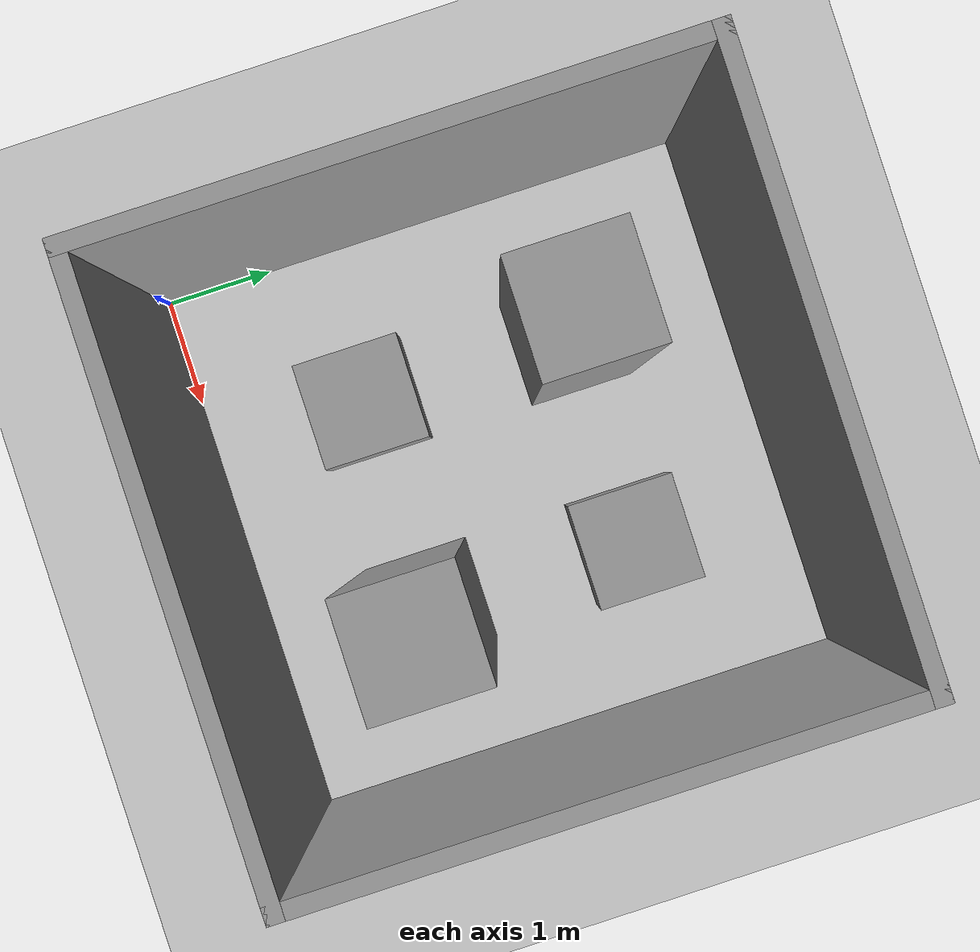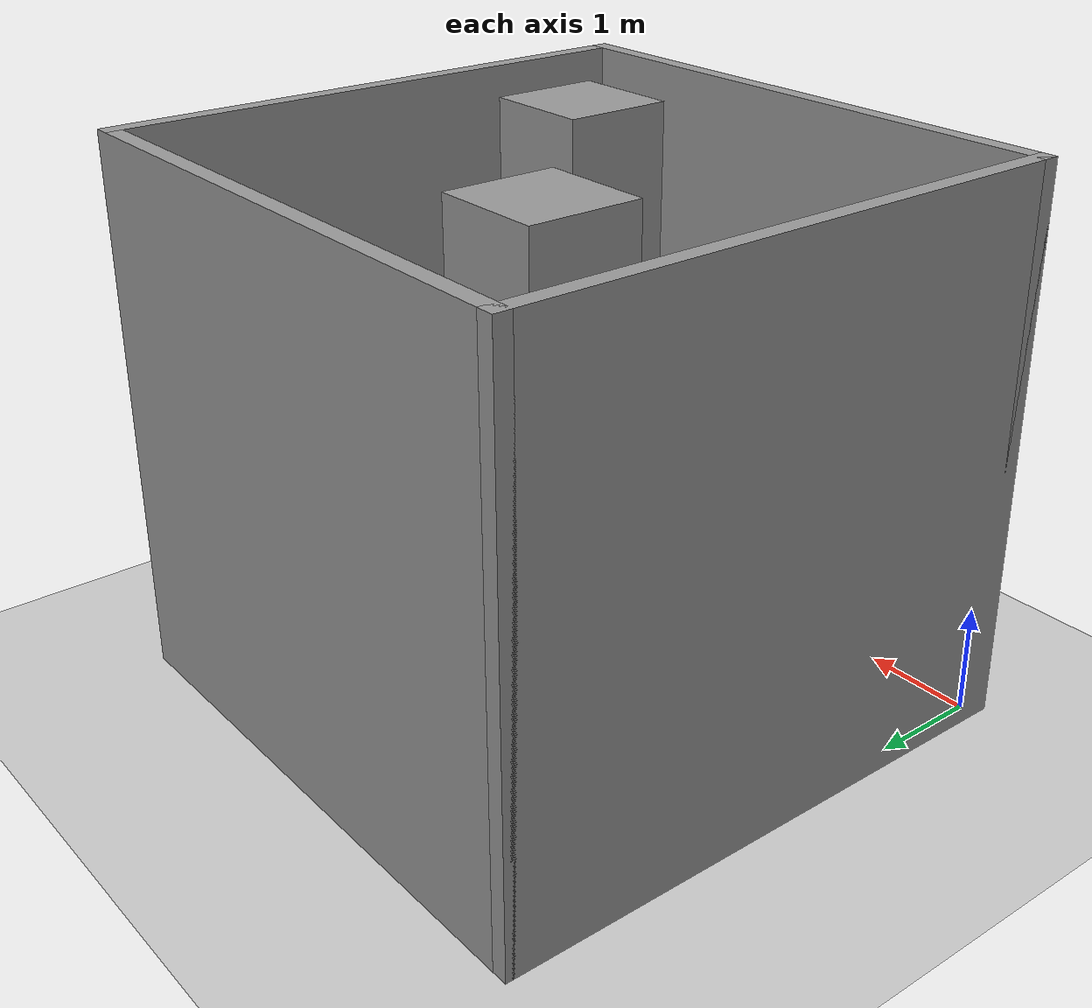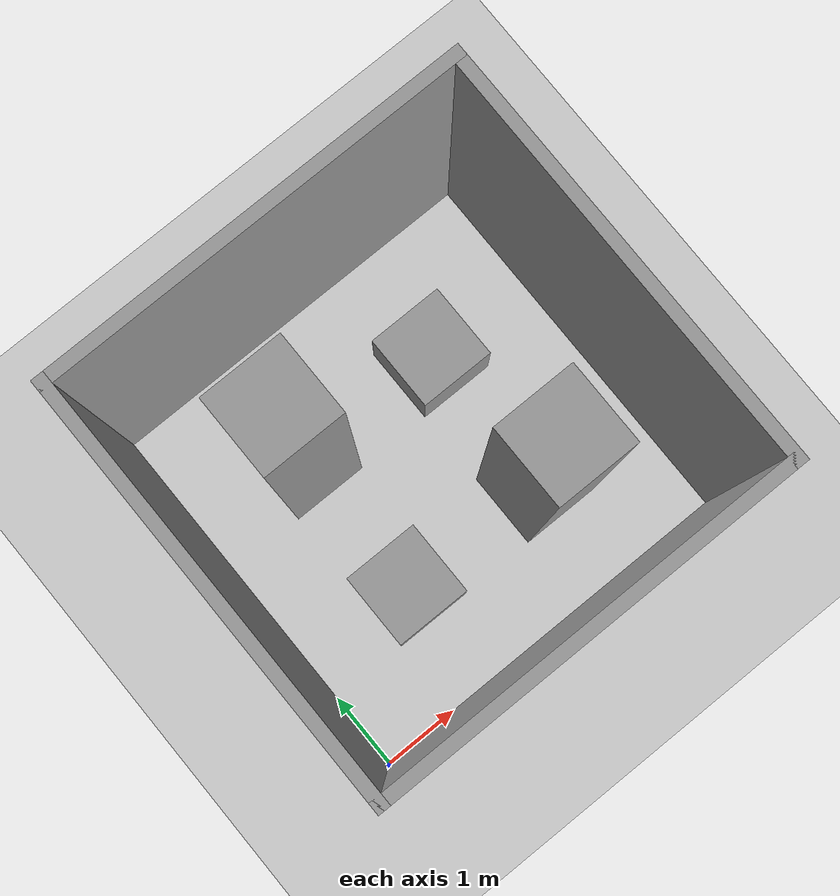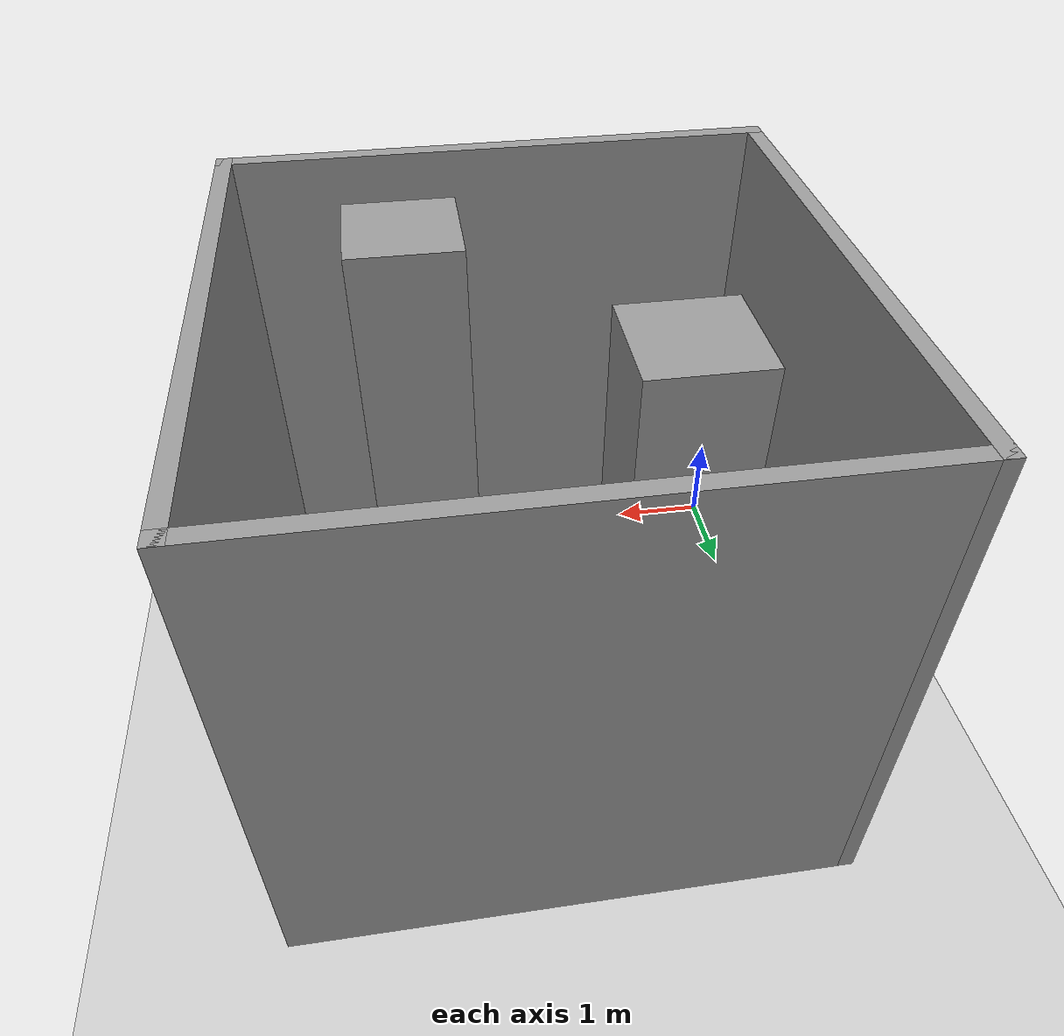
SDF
<sdf version="1.6">
 <world name="default">
  <include><uri>model://ground_plane</uri></include>
  <include><uri>model://sun</uri></include>
  <scene><shadows>false</shadows></scene>
  <physics type="ode">
   <real_time_update_rate>1000.0</real_time_update_rate>
   <max_step_size>0.001</max_step_size>
   <real_time_factor>1</real_time_factor>
   <ode>
    <solver>
     <type>quick</type>
     <iters>150</iters>
     <precon_iters>0</precon_iters>
     <sor>1.400000</sor>
     <use_dynamic_moi_rescaling>1</use_dynamic_moi_rescaling>
    </solver>
    <constraints>
     <cfm>0.00001</cfm>
     <erp>0.2</erp>
     <contact_max_correcting_vel>2000.000000</contact_max_correcting_vel>
     <contact_surface_layer>0.01000</contact_surface_layer>
    </constraints>
   </ode>
  </physics>
  <include><uri>model://env3</uri><pose>2.5 2.5 0 0 0 1.570796</pose></include>
 </world>
</sdf>

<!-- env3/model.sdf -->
<sdf version="1.7">
  <model name="env3">
    <link name="Box_1">
      <collision name="Box_1_Collision">
        <laser_retro>0</laser_retro>
        <max_contacts>10</max_contacts>
        <pose>0 0 0 0 -0 0</pose>
        <geometry>
          <box>
            <size>1 1 1</size>
          </box>
        </geometry>
        <surface>
          <friction>
            <ode>
              <mu>1</mu>
              <mu2>1</mu2>
              <fdir1>0 0 0</fdir1>
              <slip1>0</slip1>
              <slip2>0</slip2>
            </ode>
            <torsional>
              <coefficient>1</coefficient>
              <patch_radius>0</patch_radius>
              <surface_radius>0</surface_radius>
              <use_patch_radius>1</use_patch_radius>
              <ode>
                <slip>0</slip>
              </ode>
            </torsional>
          </friction>
          <bounce>
            <restitution_coefficient>0</restitution_coefficient>
            <threshold>1e+06</threshold>
          </bounce>
          <contact>
            <collide_without_contact>0</collide_without_contact>
            <collide_without_contact_bitmask>1</collide_without_contact_bitmask>
            <collide_bitmask>1</collide_bitmask>
            <ode>
              <soft_cfm>0</soft_cfm>
              <soft_erp>0.2</soft_erp>
              <kp>1e+13</kp>
              <kd>1</kd>
              <max_vel>0.01</max_vel>
              <min_depth>0</min_depth>
            </ode>
            <bullet>
              <split_impulse>1</split_impulse>
              <split_impulse_penetration_threshold>-0.01</split_impulse_penetration_threshold>
              <soft_cfm>0</soft_cfm>
              <soft_erp>0.2</soft_erp>
              <kp>1e+13</kp>
              <kd>1</kd>
            </bullet>
          </contact>
        </surface>
      </collision>
      <visual name="Box_1_Visual">
        <pose>0 0 0 0 -0 0</pose>
        <geometry>
          <box>
            <size>1 1 1</size>
          </box>
        </geometry>
        <material>
          <lighting>1</lighting>
          <script>
            <uri>file://media/materials/scripts/gazebo.material</uri>
            <name>Gazebo/Grey</name>
          </script>
          <shader type="pixel">
            <normal_map>__default__</normal_map>
          </shader>
          <ambient>0.3 0.3 0.3 1</ambient>
          <diffuse>0.7 0.7 0.7 1</diffuse>
          <specular>0.01 0.01 0.01 1</specular>
          <emissive>0 0 0 1</emissive>
        </material>
        <transparency>0</transparency>
        <cast_shadows>1</cast_shadows>
      </visual>
      <inertial>
        <mass>1</mass>
        <inertia>
          <ixx>0.166667</ixx>
          <ixy>0</ixy>
          <ixz>0</ixz>
          <iyy>0.166667</iyy>
          <iyz>0</iyz>
          <izz>0.166667</izz>
        </inertia>
        <pose>0 0 0 0 -0 0</pose>
      </inertial>
      <pose>1 -1 0.5 0 -0 0</pose>
      <gravity>1</gravity>
      <self_collide>0</self_collide>
      <kinematic>0</kinematic>
      <enable_wind>0</enable_wind>
    </link>
    <link name="Box_2">
      <collision name="Box_2_Collision">
        <laser_retro>0</laser_retro>
        <max_contacts>10</max_contacts>
        <pose>0 0 0 0 -0 0</pose>
        <geometry>
          <box>
            <size>1 1 5</size>
          </box>
        </geometry>
        <surface>
          <friction>
            <ode>
              <mu>1</mu>
              <mu2>1</mu2>
              <fdir1>0 0 0</fdir1>
              <slip1>0</slip1>
              <slip2>0</slip2>
            </ode>
            <torsional>
              <coefficient>1</coefficient>
              <patch_radius>0</patch_radius>
              <surface_radius>0</surface_radius>
              <use_patch_radius>1</use_patch_radius>
              <ode>
                <slip>0</slip>
              </ode>
            </torsional>
          </friction>
          <bounce>
            <restitution_coefficient>0</restitution_coefficient>
            <threshold>1e+06</threshold>
          </bounce>
          <contact>
            <collide_without_contact>0</collide_without_contact>
            <collide_without_contact_bitmask>1</collide_without_contact_bitmask>
            <collide_bitmask>1</collide_bitmask>
            <ode>
              <soft_cfm>0</soft_cfm>
              <soft_erp>0.2</soft_erp>
              <kp>1e+13</kp>
              <kd>1</kd>
              <max_vel>0.01</max_vel>
              <min_depth>0</min_depth>
            </ode>
            <bullet>
              <split_impulse>1</split_impulse>
              <split_impulse_penetration_threshold>-0.01</split_impulse_penetration_threshold>
              <soft_cfm>0</soft_cfm>
              <soft_erp>0.2</soft_erp>
              <kp>1e+13</kp>
              <kd>1</kd>
            </bullet>
          </contact>
        </surface>
      </collision>
      <visual name="Box_2_Visual">
        <pose>0 0 0 0 -0 0</pose>
        <geometry>
          <box>
            <size>1 1 5</size>
          </box>
        </geometry>
        <material>
          <lighting>1</lighting>
          <script>
            <uri>file://media/materials/scripts/gazebo.material</uri>
            <name>Gazebo/Grey</name>
          </script>
          <shader type="pixel">
            <normal_map>__default__</normal_map>
          </shader>
          <ambient>0.3 0.3 0.3 1</ambient>
          <diffuse>0.7 0.7 0.7 1</diffuse>
          <specular>0.01 0.01 0.01 1</specular>
          <emissive>0 0 0 1</emissive>
        </material>
        <transparency>0</transparency>
        <cast_shadows>1</cast_shadows>
      </visual>
      <inertial>
        <mass>5.75157</mass>
        <inertia>
          <ixx>16.3347</ixx>
          <ixy>0</ixy>
          <ixz>0</ixz>
          <iyy>16.3347</iyy>
          <iyz>0</iyz>
          <izz>0.958595</izz>
        </inertia>
        <pose>0 0 0 0 -0 0</pose>
      </inertial>
      <pose>1 1 2.5 0 -0 0</pose>
      <gravity>1</gravity>
      <self_collide>0</self_collide>
      <kinematic>0</kinematic>
      <enable_wind>0</enable_wind>
    </link>
    <link name="Box_3">
      <collision name="Box_3_Collision">
        <laser_retro>0</laser_retro>
        <max_contacts>10</max_contacts>
        <pose>0 0 0 0 -0 0</pose>
        <geometry>
          <box>
            <size>1 1 1</size>
          </box>
        </geometry>
        <surface>
          <friction>
            <ode>
              <mu>1</mu>
              <mu2>1</mu2>
              <fdir1>0 0 0</fdir1>
              <slip1>0</slip1>
              <slip2>0</slip2>
            </ode>
            <torsional>
              <coefficient>1</coefficient>
              <patch_radius>0</patch_radius>
              <surface_radius>0</surface_radius>
              <use_patch_radius>1</use_patch_radius>
              <ode>
                <slip>0</slip>
              </ode>
            </torsional>
          </friction>
          <bounce>
            <restitution_coefficient>0</restitution_coefficient>
            <threshold>1e+06</threshold>
          </bounce>
          <contact>
            <collide_without_contact>0</collide_without_contact>
            <collide_without_contact_bitmask>1</collide_without_contact_bitmask>
            <collide_bitmask>1</collide_bitmask>
            <ode>
              <soft_cfm>0</soft_cfm>
              <soft_erp>0.2</soft_erp>
              <kp>1e+13</kp>
              <kd>1</kd>
              <max_vel>0.01</max_vel>
              <min_depth>0</min_depth>
            </ode>
            <bullet>
              <split_impulse>1</split_impulse>
              <split_impulse_penetration_threshold>-0.01</split_impulse_penetration_threshold>
              <soft_cfm>0</soft_cfm>
              <soft_erp>0.2</soft_erp>
              <kp>1e+13</kp>
              <kd>1</kd>
            </bullet>
          </contact>
        </surface>
      </collision>
      <visual name="Box_3_Visual">
        <pose>0 0 0 0 -0 0</pose>
        <geometry>
          <box>
            <size>1 1 1</size>
          </box>
        </geometry>
        <material>
          <lighting>1</lighting>
          <script>
            <uri>file://media/materials/scripts/gazebo.material</uri>
            <name>Gazebo/Grey</name>
          </script>
          <shader type="pixel">
            <normal_map>__default__</normal_map>
          </shader>
          <ambient>0.3 0.3 0.3 1</ambient>
          <diffuse>0.7 0.7 0.7 1</diffuse>
          <specular>0.01 0.01 0.01 1</specular>
          <emissive>0 0 0 1</emissive>
        </material>
        <transparency>0</transparency>
        <cast_shadows>1</cast_shadows>
      </visual>
      <inertial>
        <mass>1</mass>
        <inertia>
          <ixx>0.166667</ixx>
          <ixy>0</ixy>
          <ixz>0</ixz>
          <iyy>0.166667</iyy>
          <iyz>0</iyz>
          <izz>0.166667</izz>
        </inertia>
        <pose>0 0 0 0 -0 0</pose>
      </inertial>
      <pose>-1 1 0.5 0 -0 0</pose>
      <gravity>1</gravity>
      <self_collide>0</self_collide>
      <kinematic>0</kinematic>
      <enable_wind>0</enable_wind>
    </link>
    <link name="Box_4">
      <collision name="Box_4_Collision">
        <laser_retro>0</laser_retro>
        <max_contacts>10</max_contacts>
        <pose>0 0 0 0 -0 0</pose>
        <geometry>
          <box>
            <size>1 1 5</size>
          </box>
        </geometry>
        <surface>
          <friction>
            <ode>
              <mu>1</mu>
              <mu2>1</mu2>
              <fdir1>0 0 0</fdir1>
              <slip1>0</slip1>
              <slip2>0</slip2>
            </ode>
            <torsional>
              <coefficient>1</coefficient>
              <patch_radius>0</patch_radius>
              <surface_radius>0</surface_radius>
              <use_patch_radius>1</use_patch_radius>
              <ode>
                <slip>0</slip>
              </ode>
            </torsional>
          </friction>
          <bounce>
            <restitution_coefficient>0</restitution_coefficient>
            <threshold>1e+06</threshold>
          </bounce>
          <contact>
            <collide_without_contact>0</collide_without_contact>
            <collide_without_contact_bitmask>1</collide_without_contact_bitmask>
            <collide_bitmask>1</collide_bitmask>
            <ode>
              <soft_cfm>0</soft_cfm>
              <soft_erp>0.2</soft_erp>
              <kp>1e+13</kp>
              <kd>1</kd>
              <max_vel>0.01</max_vel>
              <min_depth>0</min_depth>
            </ode>
            <bullet>
              <split_impulse>1</split_impulse>
              <split_impulse_penetration_threshold>-0.01</split_impulse_penetration_threshold>
              <soft_cfm>0</soft_cfm>
              <soft_erp>0.2</soft_erp>
              <kp>1e+13</kp>
              <kd>1</kd>
            </bullet>
          </contact>
        </surface>
      </collision>
      <visual name="Box_4_Visual">
        <pose>0 0 0 0 -0 0</pose>
        <geometry>
          <box>
            <size>1 1 5</size>
          </box>
        </geometry>
        <material>
          <lighting>1</lighting>
          <script>
            <uri>file://media/materials/scripts/gazebo.material</uri>
            <name>Gazebo/Grey</name>
          </script>
          <shader type="pixel">
            <normal_map>__default__</normal_map>
          </shader>
          <ambient>0.3 0.3 0.3 1</ambient>
          <diffuse>0.7 0.7 0.7 1</diffuse>
          <specular>0.01 0.01 0.01 1</specular>
          <emissive>0 0 0 1</emissive>
        </material>
        <transparency>0</transparency>
        <cast_shadows>1</cast_shadows>
      </visual>
      <inertial>
        <mass>1</mass>
        <inertia>
          <ixx>0.166667</ixx>
          <ixy>0</ixy>
          <ixz>0</ixz>
          <iyy>0.166667</iyy>
          <iyz>0</iyz>
          <izz>0.166667</izz>
        </inertia>
        <pose>0 0 0 0 -0 0</pose>
      </inertial>
      <pose>-1 -1 2.5 0 -0 0</pose>
      <gravity>1</gravity>
      <self_collide>0</self_collide>
      <kinematic>0</kinematic>
      <enable_wind>0</enable_wind>
    </link>
    <model name="Room_Square_Model">
      <pose>0 0 0 0 0 0</pose>
      <link name="Wall_North">
        <collision name="Wall_North_Collision">
          <geometry>
            <box>
              <size>5.3 0.15 5</size>
            </box>
          </geometry>
          <pose>0 0 2.5 0 -0 0</pose>
          <max_contacts>10</max_contacts>
        </collision>
        <visual name="Wall_North_Visual">
          <geometry>
            <box>
              <size>5.3 0.15 5</size>
            </box>
          </geometry>
          <pose>0 0 2.5 0 -0 0</pose>
          <material>
            <script>
              <uri>file://media/materials/scripts/gazebo.material</uri>
              <name>Gazebo/Grey</name>
            </script>
            <ambient>1 1 1 1</ambient>
          </material>
          <meta>
            <layer>0</layer>
          </meta>
        </visual>
        <pose>0 2.575 0 0 0 0</pose>
        <self_collide>0</self_collide>
        <enable_wind>0</enable_wind>
        <kinematic>0</kinematic>
      </link>
      <link name="Wall_East">
        <collision name="Wall_East_Collision">
          <geometry>
            <box>
              <size>5.3 0.15 5</size>
            </box>
          </geometry>
          <pose>0 0 2.5 0 -0 0</pose>
          <max_contacts>10</max_contacts>
        </collision>
        <visual name="Wall_East_Visual">
          <geometry>
            <box>
              <size>5.3 0.15 5</size>
            </box>
          </geometry>
          <pose>0 0 2.5 0 -0 0</pose>
          <material>
            <script>
              <uri>file://media/materials/scripts/gazebo.material</uri>
              <name>Gazebo/Grey</name>
            </script>
            <ambient>1 1 1 1</ambient>
          </material>
          <meta>
            <layer>0</layer>
          </meta>
        </visual>
        <pose>2.575 0 0 0 0 1.5708</pose>
        <self_collide>0</self_collide>
        <enable_wind>0</enable_wind>
        <kinematic>0</kinematic>
      </link>
      <link name="Wall_South">
        <collision name="Wall_South_Collision">
          <geometry>
            <box>
              <size>5.3 0.15 5</size>
            </box>
          </geometry>
          <pose>0 0 2.5 0 -0 0</pose>
          <max_contacts>10</max_contacts>
        </collision>
        <visual name="Wall_South_Visual">
          <geometry>
            <box>
              <size>5.3 0.15 5</size>
            </box>
          </geometry>
          <pose>0 0 2.5 0 -0 0</pose>
          <material>
            <script>
              <uri>file://media/materials/scripts/gazebo.material</uri>
              <name>Gazebo/Grey</name>
            </script>
            <ambient>1 1 1 1</ambient>
          </material>
          <meta>
            <layer>0</layer>
          </meta>
        </visual>
        <pose>0 -2.575 0 0 0 0</pose>
        <self_collide>0</self_collide>
        <enable_wind>0</enable_wind>
        <kinematic>0</kinematic>
      </link>
      <link name="Wall_West">
        <collision name="Wall_West_Collision">
          <geometry>
            <box>
              <size>5.3 0.15 5</size>
            </box>
          </geometry>
          <pose>0 0 2.5 0 -0 0</pose>
          <max_contacts>10</max_contacts>
        </collision>
        <visual name="Wall_West_Visual">
          <geometry>
            <box>
              <size>5.3 0.15 5</size>
            </box>
          </geometry>
          <pose>0 0 2.5 0 -0 0</pose>
          <material>
            <script>
              <uri>file://media/materials/scripts/gazebo.material</uri>
              <name>Gazebo/Grey</name>
            </script>
            <ambient>1 1 1 1</ambient>
          </material>
          <meta>
            <layer>0</layer>
          </meta>
        </visual>
        <pose>-2.575 0 0 0 0 1.5708</pose>
        <self_collide>0</self_collide>
        <enable_wind>0</enable_wind>
        <kinematic>0</kinematic>
      </link>
      <static>1</static>
    </model>
    <static>0</static>
    <allow_auto_disable>1</allow_auto_disable>
  </model>
</sdf>
